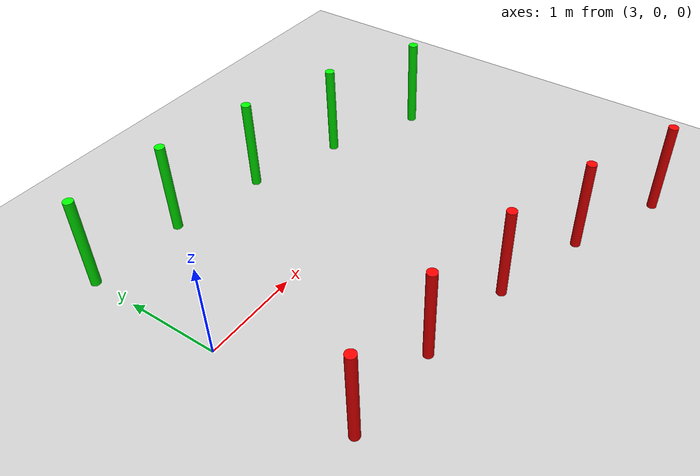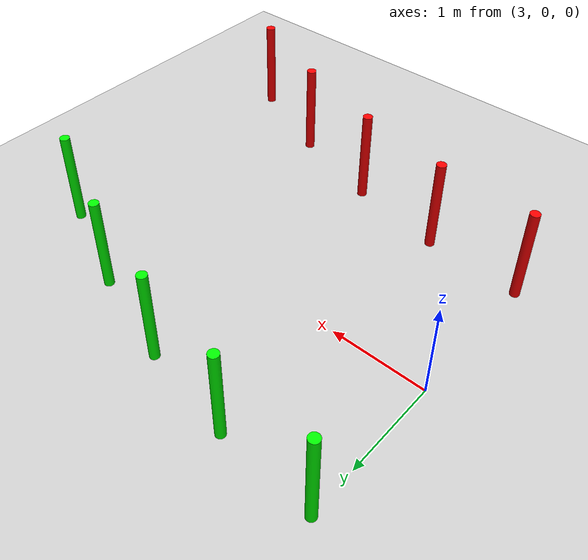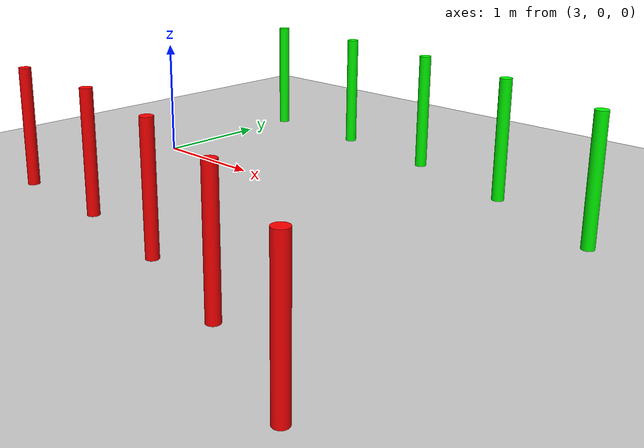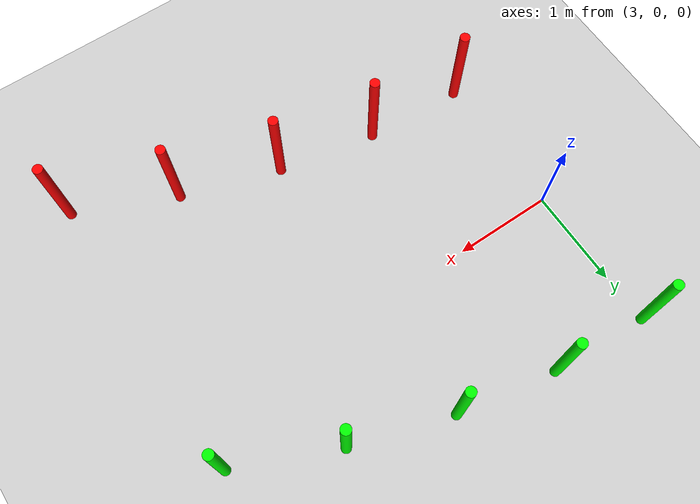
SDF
<?xml version="1.0"?>
<sdf version="1.9">
  <!-- Generado por uav_sim/tools/generate_buoy_channel_world.py -- no editar a mano -->
  <!-- 5 filas | entre filas 1.0 m | verde-roja 3.0 m | curva derecha 1.0 m | boyas D=0.1 m H=1.0 m -->
  <world name="ten_buoys_world">

    <physics type="ode">
      <max_step_size>0.004</max_step_size>
      <real_time_factor>1.0</real_time_factor>
      <real_time_update_rate>250</real_time_update_rate>
    </physics>

    <plugin name="gz::sim::systems::Physics"          filename="gz-sim-physics-system"/>
    <plugin name="gz::sim::systems::UserCommands"     filename="gz-sim-user-commands-system"/>
    <plugin name="gz::sim::systems::SceneBroadcaster" filename="gz-sim-scene-broadcaster-system"/>
    <plugin name="gz::sim::systems::Contact"          filename="gz-sim-contact-system"/>
    <plugin name="gz::sim::systems::Imu"              filename="gz-sim-imu-system"/>
    <plugin name="gz::sim::systems::AirPressure"      filename="gz-sim-air-pressure-system"/>
    <plugin name="gz::sim::systems::Sensors"          filename="gz-sim-sensors-system">
      <render_engine>ogre2</render_engine>
    </plugin>

    <gravity>0 0 -9.8</gravity>
    <magnetic_field>6e-06 2.3e-05 -4.2e-05</magnetic_field>
    <atmosphere type="adiabatic"/>

    <scene>
      <grid>false</grid>
      <ambient>0.4 0.4 0.4 1</ambient>
      <background>0.7 0.7 0.7 1</background>
      <shadows>true</shadows>
    </scene>

    <light name="sunUTC" type="directional">
      <pose>0 0 500 0 0 0</pose>
      <cast_shadows>true</cast_shadows>
      <intensity>1</intensity>
      <direction>0.001 0.625 -0.78</direction>
      <diffuse>0.904 0.904 0.904 1</diffuse>
      <specular>0.271 0.271 0.271 1</specular>
      <attenuation>
        <range>2000</range>
        <constant>1</constant>
        <linear>0</linear>
        <quadratic>0</quadratic>
      </attenuation>
    </light>

    <model name="ground_plane">
      <static>true</static>
      <link name="link">
        <collision name="collision">
          <geometry>
            <plane><normal>0 0 1</normal><size>100 100</size></plane>
          </geometry>
        </collision>
        <visual name="visual">
          <geometry>
            <plane><normal>0 0 1</normal><size>100 100</size></plane>
          </geometry>
          <material>
            <ambient>0.8 0.8 0.8 1</ambient>
            <diffuse>0.8 0.8 0.8 1</diffuse>
            <specular>0.8 0.8 0.8 1</specular>
          </material>
        </visual>
      </link>
    </model>

    <model name="green_buoy_1">
      <static>true</static>
      <pose>3.000 1.500 0.500 0 0 0</pose>
      <link name="link">
        <collision name="collision">
          <geometry><cylinder><radius>0.050</radius><length>1.000</length></cylinder></geometry>
        </collision>
        <visual name="visual">
          <geometry><cylinder><radius>0.050</radius><length>1.000</length></cylinder></geometry>
          <material>
            <ambient>0 1 0 1</ambient>
            <diffuse>0 1 0 1</diffuse>
            <specular>0.1 0.1 0.1 1</specular>
          </material>
        </visual>
      </link>
    </model>
    <model name="red_buoy_1">
      <static>true</static>
      <pose>3.000 -1.500 0.500 0 0 0</pose>
      <link name="link">
        <collision name="collision">
          <geometry><cylinder><radius>0.050</radius><length>1.000</length></cylinder></geometry>
        </collision>
        <visual name="visual">
          <geometry><cylinder><radius>0.050</radius><length>1.000</length></cylinder></geometry>
          <material>
            <ambient>1 0 0 1</ambient>
            <diffuse>1 0 0 1</diffuse>
            <specular>0.1 0.1 0.1 1</specular>
          </material>
        </visual>
      </link>
    </model>
    <model name="green_buoy_2">
      <static>true</static>
      <pose>4.000 1.438 0.500 0 0 0</pose>
      <link name="link">
        <collision name="collision">
          <geometry><cylinder><radius>0.050</radius><length>1.000</length></cylinder></geometry>
        </collision>
        <visual name="visual">
          <geometry><cylinder><radius>0.050</radius><length>1.000</length></cylinder></geometry>
          <material>
            <ambient>0 1 0 1</ambient>
            <diffuse>0 1 0 1</diffuse>
            <specular>0.1 0.1 0.1 1</specular>
          </material>
        </visual>
      </link>
    </model>
    <model name="red_buoy_2">
      <static>true</static>
      <pose>4.000 -1.562 0.500 0 0 0</pose>
      <link name="link">
        <collision name="collision">
          <geometry><cylinder><radius>0.050</radius><length>1.000</length></cylinder></geometry>
        </collision>
        <visual name="visual">
          <geometry><cylinder><radius>0.050</radius><length>1.000</length></cylinder></geometry>
          <material>
            <ambient>1 0 0 1</ambient>
            <diffuse>1 0 0 1</diffuse>
            <specular>0.1 0.1 0.1 1</specular>
          </material>
        </visual>
      </link>
    </model>
    <model name="green_buoy_3">
      <static>true</static>
      <pose>5.000 1.250 0.500 0 0 0</pose>
      <link name="link">
        <collision name="collision">
          <geometry><cylinder><radius>0.050</radius><length>1.000</length></cylinder></geometry>
        </collision>
        <visual name="visual">
          <geometry><cylinder><radius>0.050</radius><length>1.000</length></cylinder></geometry>
          <material>
            <ambient>0 1 0 1</ambient>
            <diffuse>0 1 0 1</diffuse>
            <specular>0.1 0.1 0.1 1</specular>
          </material>
        </visual>
      </link>
    </model>
    <model name="red_buoy_3">
      <static>true</static>
      <pose>5.000 -1.750 0.500 0 0 0</pose>
      <link name="link">
        <collision name="collision">
          <geometry><cylinder><radius>0.050</radius><length>1.000</length></cylinder></geometry>
        </collision>
        <visual name="visual">
          <geometry><cylinder><radius>0.050</radius><length>1.000</length></cylinder></geometry>
          <material>
            <ambient>1 0 0 1</ambient>
            <diffuse>1 0 0 1</diffuse>
            <specular>0.1 0.1 0.1 1</specular>
          </material>
        </visual>
      </link>
    </model>
    <model name="green_buoy_4">
      <static>true</static>
      <pose>6.000 0.938 0.500 0 0 0</pose>
      <link name="link">
        <collision name="collision">
          <geometry><cylinder><radius>0.050</radius><length>1.000</length></cylinder></geometry>
        </collision>
        <visual name="visual">
          <geometry><cylinder><radius>0.050</radius><length>1.000</length></cylinder></geometry>
          <material>
            <ambient>0 1 0 1</ambient>
            <diffuse>0 1 0 1</diffuse>
            <specular>0.1 0.1 0.1 1</specular>
          </material>
        </visual>
      </link>
    </model>
    <model name="red_buoy_4">
      <static>true</static>
      <pose>6.000 -2.062 0.500 0 0 0</pose>
      <link name="link">
        <collision name="collision">
          <geometry><cylinder><radius>0.050</radius><length>1.000</length></cylinder></geometry>
        </collision>
        <visual name="visual">
          <geometry><cylinder><radius>0.050</radius><length>1.000</length></cylinder></geometry>
          <material>
            <ambient>1 0 0 1</ambient>
            <diffuse>1 0 0 1</diffuse>
            <specular>0.1 0.1 0.1 1</specular>
          </material>
        </visual>
      </link>
    </model>
    <model name="green_buoy_5">
      <static>true</static>
      <pose>7.000 0.500 0.500 0 0 0</pose>
      <link name="link">
        <collision name="collision">
          <geometry><cylinder><radius>0.050</radius><length>1.000</length></cylinder></geometry>
        </collision>
        <visual name="visual">
          <geometry><cylinder><radius>0.050</radius><length>1.000</length></cylinder></geometry>
          <material>
            <ambient>0 1 0 1</ambient>
            <diffuse>0 1 0 1</diffuse>
            <specular>0.1 0.1 0.1 1</specular>
          </material>
        </visual>
      </link>
    </model>
    <model name="red_buoy_5">
      <static>true</static>
      <pose>7.000 -2.500 0.500 0 0 0</pose>
      <link name="link">
        <collision name="collision">
          <geometry><cylinder><radius>0.050</radius><length>1.000</length></cylinder></geometry>
        </collision>
        <visual name="visual">
          <geometry><cylinder><radius>0.050</radius><length>1.000</length></cylinder></geometry>
          <material>
            <ambient>1 0 0 1</ambient>
            <diffuse>1 0 0 1</diffuse>
            <specular>0.1 0.1 0.1 1</specular>
          </material>
        </visual>
      </link>
    </model>
  </world>
</sdf>
